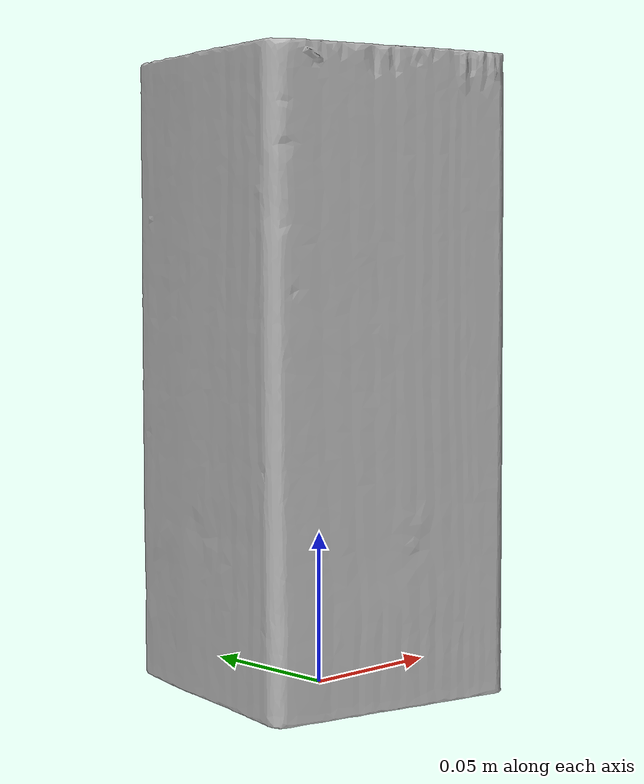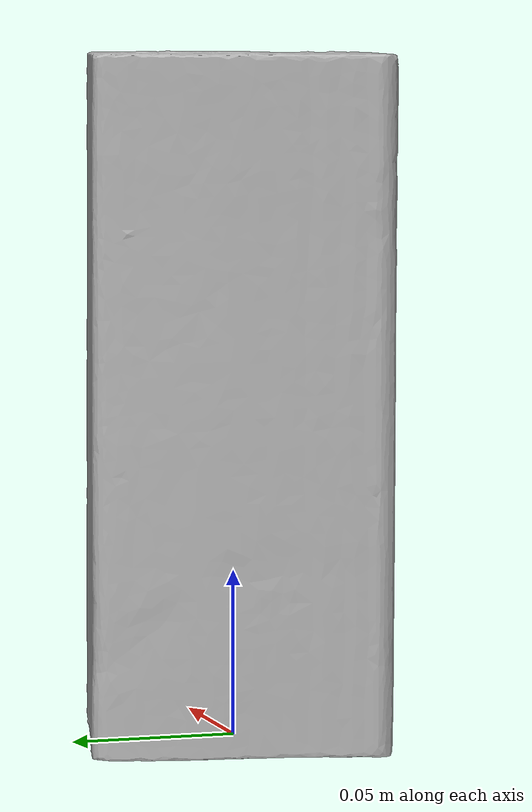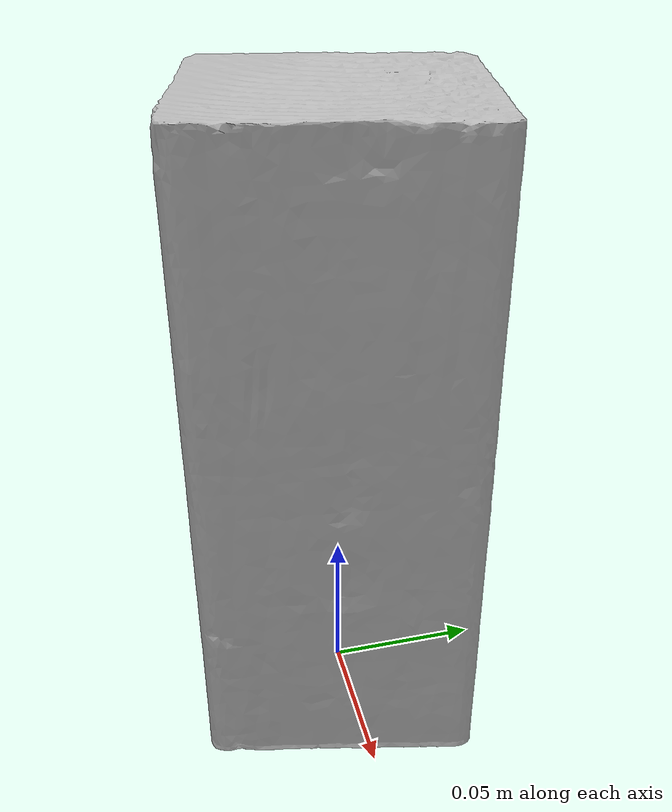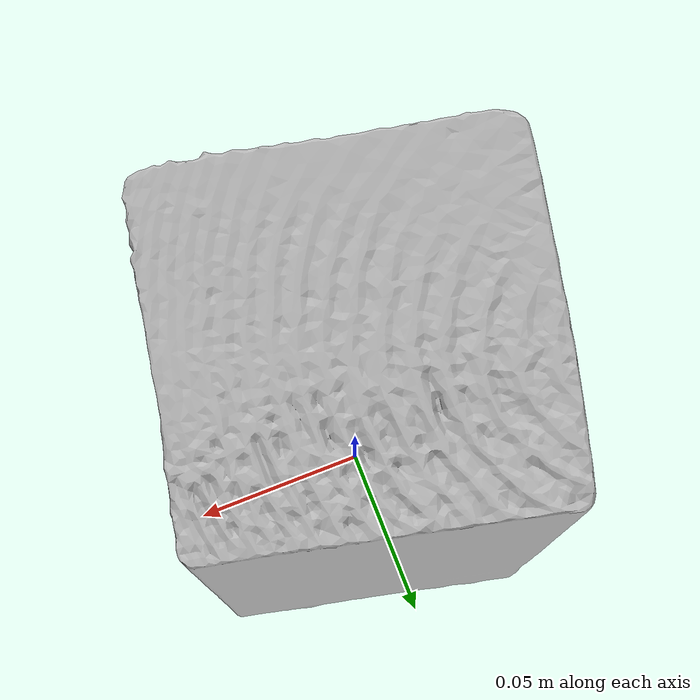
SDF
<?xml version="1.0" ?>
<sdf version='1.8'>
  <model name='ycb_036_wood_block'>
    <link name='body'>
      <inertial>
        <mass>0.729</mass>
        <pose>-0.000468948122 -0.000499626234 0.102709193 0 0 0</pose>
        <inertia>
          <ixx>0.00300270967879</ixx>
          <ixy>5.76405311296e-06</ixy>
          <ixz>1.51830180861e-05</ixz>
          <iyy>0.00301400097068</iyy>
          <iyz>9.15504989042e-06</iyz>
          <izz>0.000934651925538</izz>
        </inertia>
      </inertial>
      <visual name='ycb_036_wood_block_visual'>
        <pose>-0.023842 0.009774 -6e-05 0 0 0</pose>
        <geometry>
          <mesh>
            <uri>model://ycb_036_wood_block/meshes/textured.dae</uri>
          </mesh>
        </geometry>
      </visual>
      <collision name='ycb_036_wood_block_collision'>
        <pose>-0.023842 0.009774 -6e-05 0 0 0</pose>
        <geometry>
          <mesh>
            <uri>model://ycb_036_wood_block/meshes/nontextured.stl</uri>
          </mesh>
        </geometry>
        <max_contacts>10</max_contacts>
        <surface>
          <contact>
            <ode>
              <kp>1e15</kp>
              <kd>1e13</kd>
            </ode>
          </contact>
        </surface>
      </collision>
    </link>
  </model>
</sdf>
